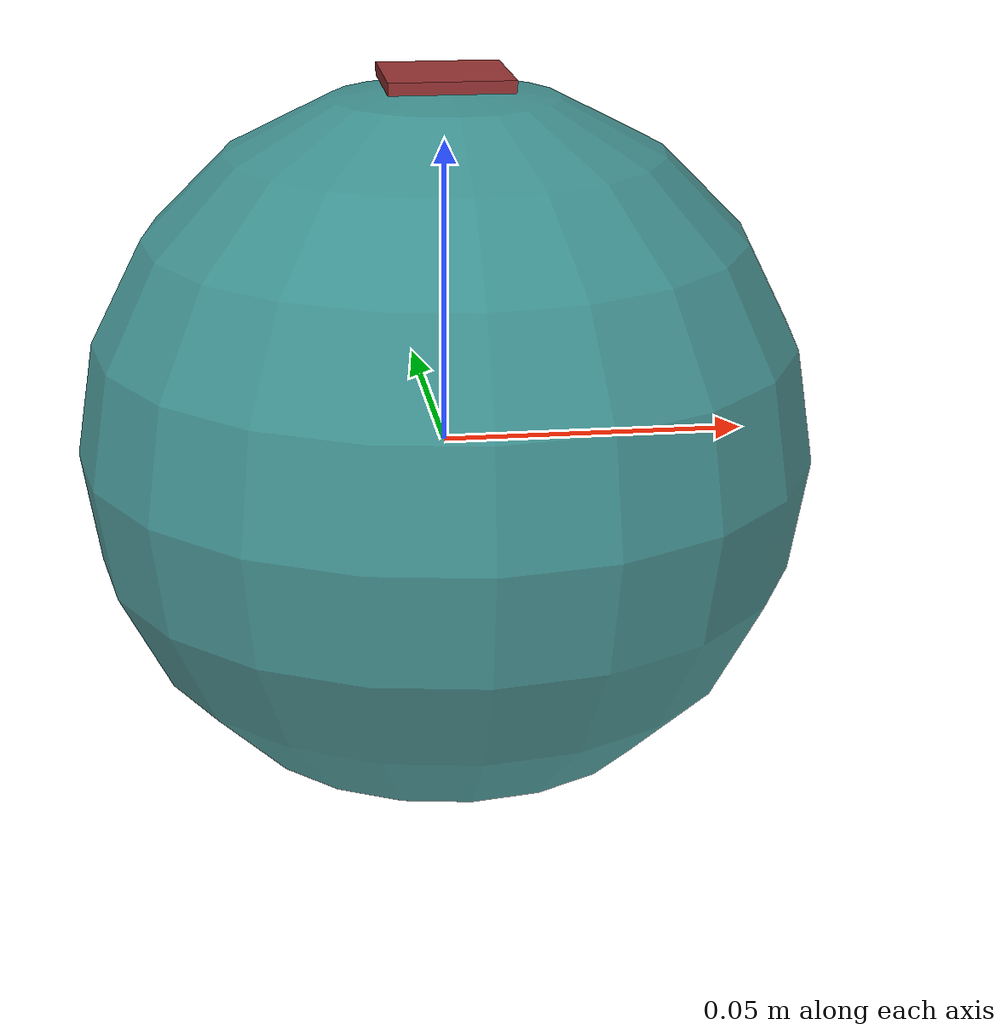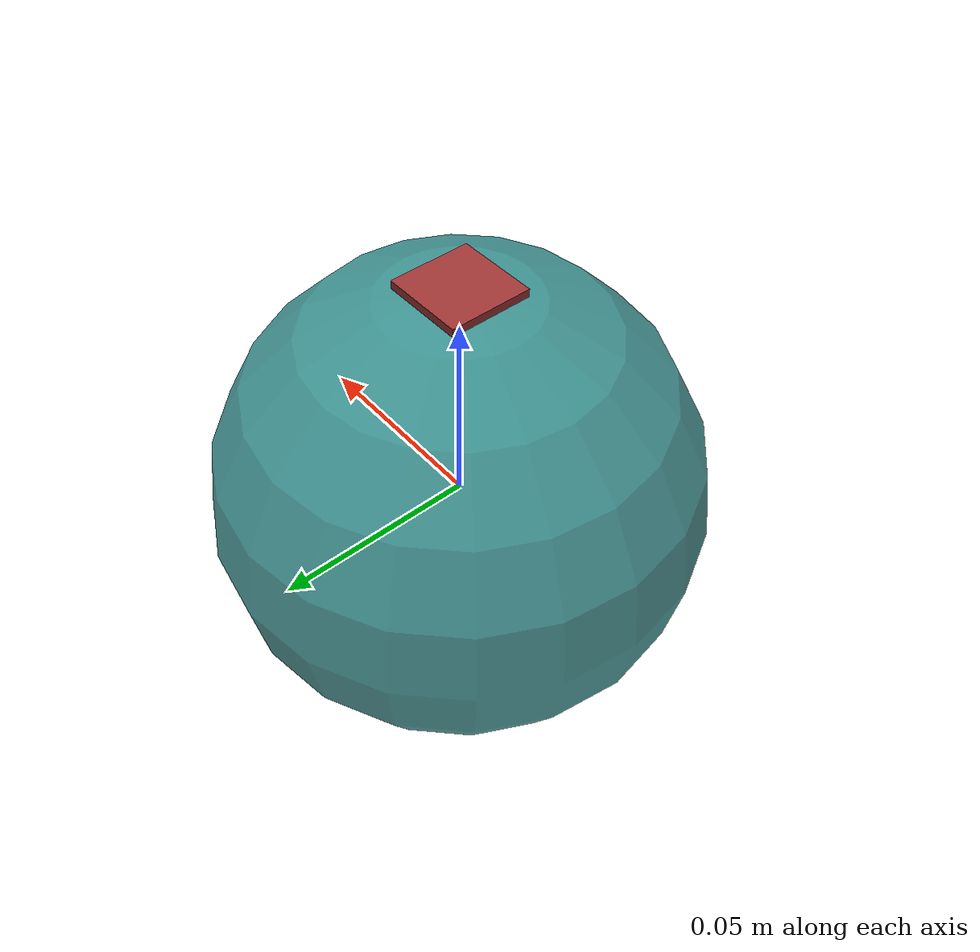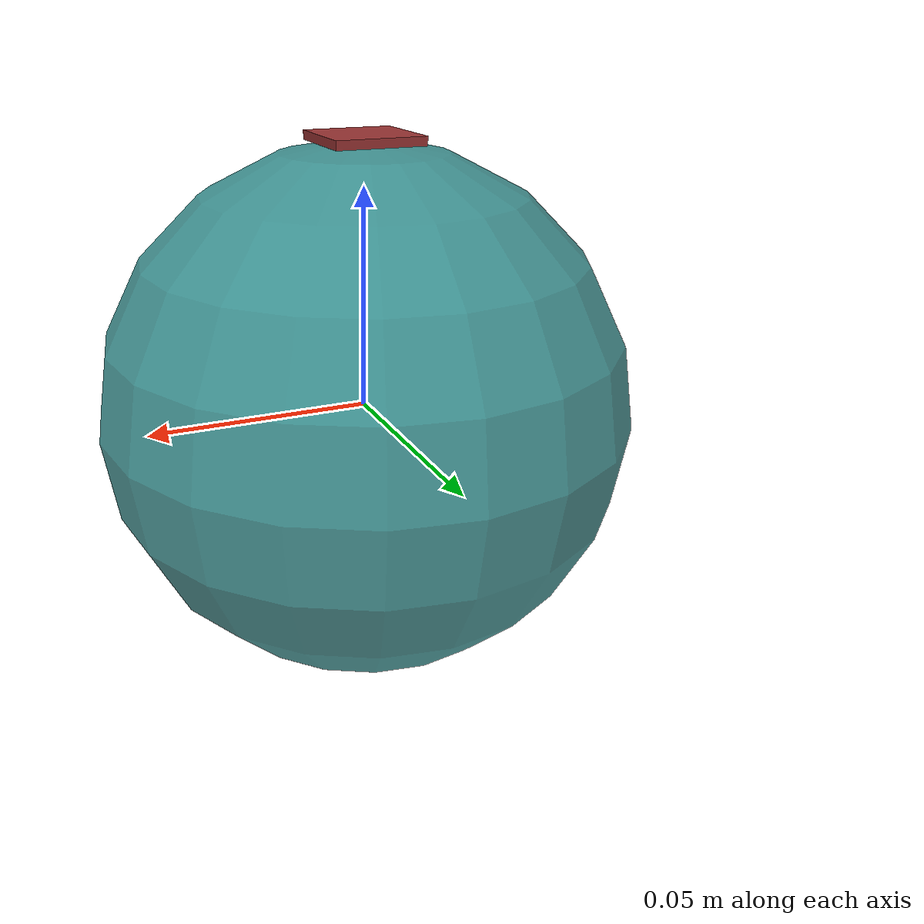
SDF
<?xml version="1.0"?>

<sdf version="1.7">
  <model name="sphere_r0.1m">
    <link name="sphere">
      <inertial>
        <mass>1.0</mass>
        <inertia>
          <ixx>0.001</ixx>
          <ixy>0</ixy>
          <ixz>0</ixz>
          <iyy>0.001</iyy>
          <iyz>0</iyz>
          <izz>0.001</izz>
        </inertia>
      </inertial>

      <visual name="visual">
        <geometry>
          <sphere>
            <radius>0.06</radius>
          </sphere>
        </geometry>
        <material>
          <diffuse>0.1 0.5 0.5 0.8</diffuse>
        </material>
      </visual>

      <visual name="visual_2">
        <pose> 0 0 0.06 0 0 0 </pose>
        <geometry>
          <box>
           <size>0.02 0.02 0.002 </size>
          </box>
        </geometry>
        <material>
          <diffuse>0.6 0.2 0.2 0.9</diffuse>
        </material>
      </visual>

      <collision name="collision">
        <geometry>
          <sphere>
            <radius>0.06</radius>
          </sphere>
        </geometry>
        <surface>
          <friction>
            <ode>
              <mu>1.0</mu>
              <mu2>1.0</mu2>
            </ode>
          </friction>
        </surface>
      </collision>
    </link>
  </model>
</sdf>
